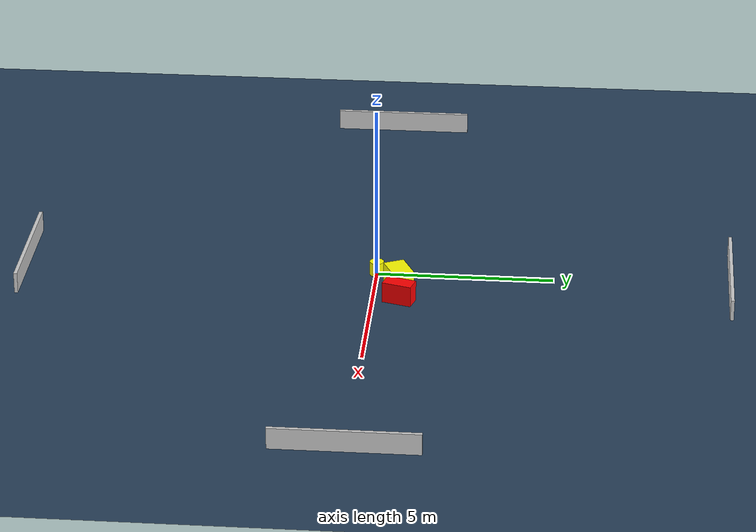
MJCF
<?xml version="1.0" ?>
<mujoco model="generated_environment">
  <option timestep="0.01" integrator="RK4" cone="elliptic"/>
  <default>
    <geom density="1"/>
  </default>
  <asset>
    <texture builtin="gradient" height="3072" name="skybox" rgb1="0.3 0.5 0.7" rgb2="0 0 0" type="skybox" width="512"/>
    <texture builtin="checker" height="300" name="groundplane" rgb1="0.2 0.3 0.4" rgb2="0.1 0.2 0.3" type="2d" width="300"/>
    <material name="groundplane" reflectance="0.2" texrepeat="5 5" texture="groundplane"/>
  </asset>
  <worldbody>
    <light dir="0 0 -1" directional="true" pos="0 0 1.5"/>
    <geom condim="3" friction="0.5 0.005 0.001" material="groundplane" name="floor" pos="0 0 0" size="0 0 0.05" type="plane"/>
    <body name="walls">
      <geom name="wall_1" condim="4" pos="-10.0 0.0 0.3" rgba="0.800000011920929 0.800000011920929 0.800000011920929 1.0" size="0.05 2.0 0.3" type="box"/>
      <geom name="wall_2" condim="4" pos="10.0 0.0 0.3" rgba="0.800000011920929 0.800000011920929 0.800000011920929 1.0" size="0.05 2.0 0.3" type="box"/>
      <geom name="wall_3" condim="4" pos="0.0 -10.0 0.3" rgba="0.800000011920929 0.800000011920929 0.800000011920929 1.0" size="2.0 0.05 0.3" type="box"/>
      <geom name="wall_4" condim="4" pos="0.0 10.0 0.3" rgba="0.800000011920929 0.800000011920929 0.800000011920929 1.0" size="2.0 0.05 0.3" type="box"/>
    </body>
    <body name="robot">
      <joint name="joint_x" type="slide" pos="0 0 0" axis="1 0 0"/>
      <joint name="joint_y" type="slide" pos="0 0 0" axis="0 1 0"/>
      <geom name="robot" type="cylinder" pos="0.0 0.0 0.2" size="0.2 0.2 0.0" mass="5.0" friction="1.0 0.005 0.0001" condim="4" rgba="1.0 1.0 0.0 1.0"/>
    </body>
    <body name="obstacle_1_movable">
      <geom name="obstacle_1_movable" condim="4" pos="0.7315583329140427 0.6802223468449543 0.3" euler="0 0 294.95973827009783" friction="0.0 0.005 0.001" rgba="1.0 1.0 0.0 1.0" size="0.3011003660540745 0.4260120589829074 0.3" type="box" mass="0.1"/>
      <joint type="free"/>
    </body>
    <body name="obstacle_2_static">
      <geom name="obstacle_2_static" condim="4" pos="1.6111269370777217 0.7542247257322994 0.3" euler="0 0 73.36053280394758" friction="0.0 0.005 0.001" rgba="1.0 0.0 0.0 1.0" size="0.4206148460509753 0.22374552557980018 0.3" type="box"/>
    </body>
  </worldbody>
  <actuator>
    <motor name="actuator_x" joint="joint_x" gear="1" ctrlrange="-1 1"/>
    <motor name="actuator_y" joint="joint_y" gear="1" ctrlrange="-1 1"/>
  </actuator>
</mujoco>
